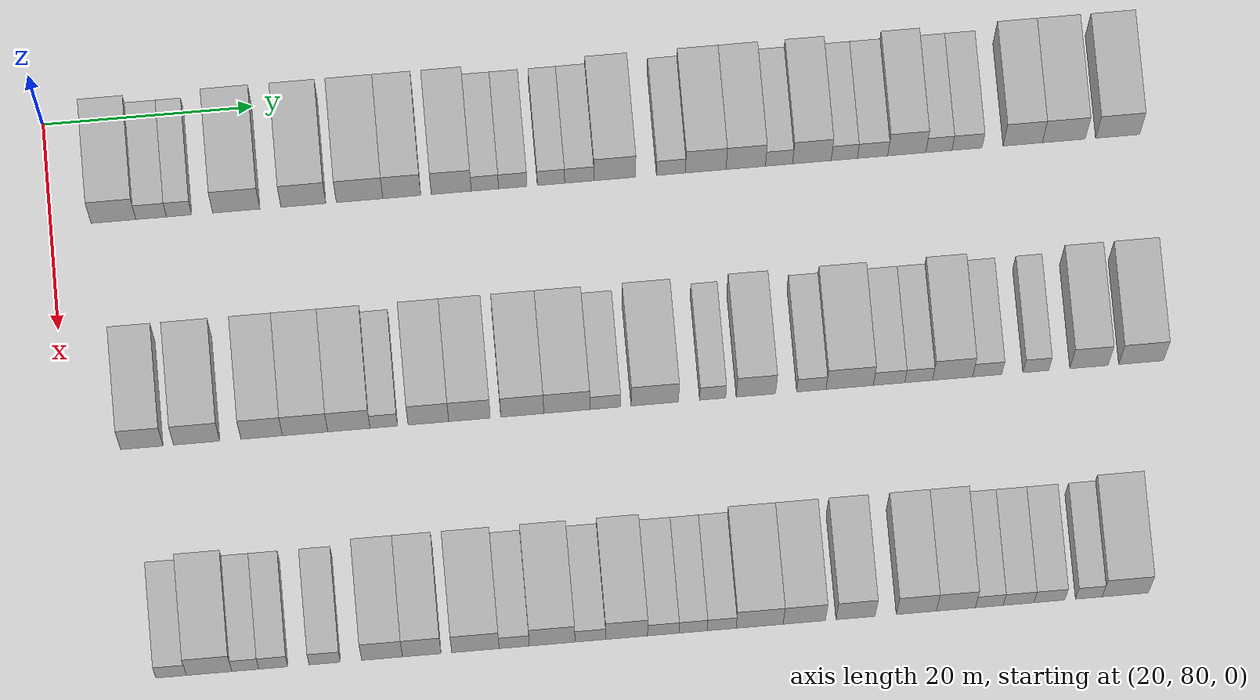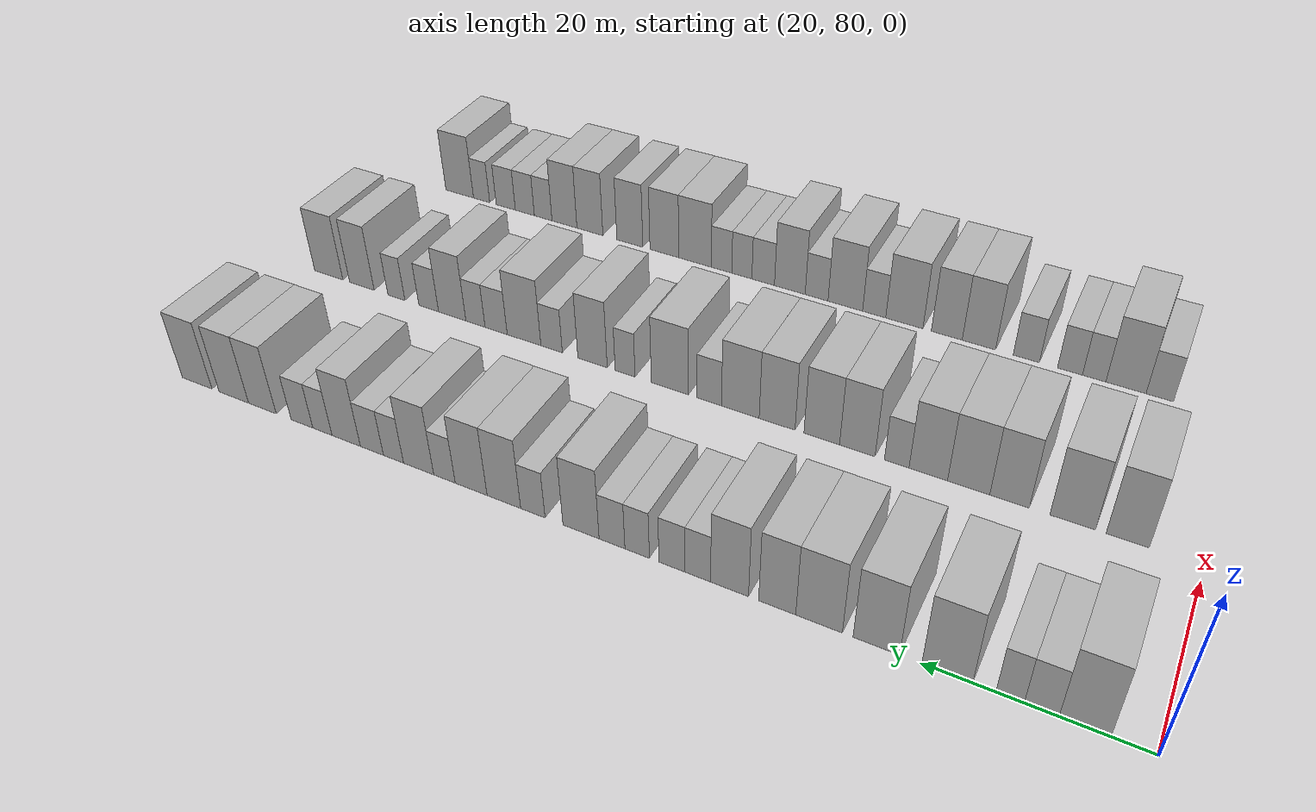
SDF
<sdf version="1.6">
 <world name="default">
  <model name="building_115">
   <static>1</static>
   <pose>25.0000 85.9565 0 0.000000 0.000000 0.000000</pose>
   <link name="link">
    <pose>0 0 4.50 0 0 0</pose>
    <collision name="collision"><geometry><box><size>10.0000 4.2495 9.0000</size></box></geometry></collision>
    <visual name="visual">
     <cast_shadows>0</cast_shadows>
     <geometry><box><size>10.0000 4.2495 9.0000</size></box></geometry>
     <material>
      <script>
       <uri>model://HANNAS_wall/materials/scripts</uri>
       <uri>model://HANNAS_wall/materials/textures</uri>
       <name>vrc/HANNAS_wall</name>
      </script>
     </material>
    </visual>
   </link>
  </model>
  <model name="building_116">
   <static>1</static>
   <pose>25.0000 89.5374 0 0.000000 0.000000 0.000000</pose>
   <link name="link">
    <pose>0 0 3.00 0 0 0</pose>
    <collision name="collision"><geometry><box><size>10.0000 2.9125 6.0000</size></box></geometry></collision>
    <visual name="visual">
     <cast_shadows>0</cast_shadows>
     <geometry><box><size>10.0000 2.9125 6.0000</size></box></geometry>
     <material>
      <script>
       <uri>model://HANNAS_wall/materials/scripts</uri>
       <uri>model://HANNAS_wall/materials/textures</uri>
       <name>vrc/HANNAS_wall</name>
      </script>
     </material>
    </visual>
   </link>
  </model>
  <model name="building_117">
   <static>1</static>
   <pose>25.0000 92.1977 0 0.000000 0.000000 0.000000</pose>
   <link name="link">
    <pose>0 0 3.00 0 0 0</pose>
    <collision name="collision"><geometry><box><size>10.0000 2.4080 6.0000</size></box></geometry></collision>
    <visual name="visual">
     <cast_shadows>0</cast_shadows>
     <geometry><box><size>10.0000 2.4080 6.0000</size></box></geometry>
     <material>
      <script>
       <uri>model://HANNAS_wall/materials/scripts</uri>
       <uri>model://HANNAS_wall/materials/textures</uri>
       <name>vrc/HANNAS_wall</name>
      </script>
     </material>
    </visual>
   </link>
  </model>
  <model name="building_118">
   <static>1</static>
   <pose>25.0000 97.6425 0 0.000000 0.000000 0.000000</pose>
   <link name="link">
    <pose>0 0 4.50 0 0 0</pose>
    <collision name="collision"><geometry><box><size>10.0000 4.4817 9.0000</size></box></geometry></collision>
    <visual name="visual">
     <cast_shadows>0</cast_shadows>
     <geometry><box><size>10.0000 4.4817 9.0000</size></box></geometry>
     <material>
      <script>
       <uri>model://HANNAS_wall/materials/scripts</uri>
       <uri>model://HANNAS_wall/materials/textures</uri>
       <name>vrc/HANNAS_wall</name>
      </script>
     </material>
    </visual>
   </link>
  </model>
  <model name="building_119">
   <static>1</static>
   <pose>25.0000 104.0181 0 0.000000 0.000000 0.000000</pose>
   <link name="link">
    <pose>0 0 4.50 0 0 0</pose>
    <collision name="collision"><geometry><box><size>10.0000 4.2696 9.0000</size></box></geometry></collision>
    <visual name="visual">
     <cast_shadows>0</cast_shadows>
     <geometry><box><size>10.0000 4.2696 9.0000</size></box></geometry>
     <material>
      <script>
       <uri>model://HANNAS_wall/materials/scripts</uri>
       <uri>model://HANNAS_wall/materials/textures</uri>
       <name>vrc/HANNAS_wall</name>
      </script>
     </material>
    </visual>
   </link>
  </model>
  <model name="building_120">
   <static>1</static>
   <pose>25.0000 109.3655 0 0.000000 0.000000 0.000000</pose>
   <link name="link">
    <pose>0 0 4.50 0 0 0</pose>
    <collision name="collision"><geometry><box><size>10.0000 4.4252 9.0000</size></box></geometry></collision>
    <visual name="visual">
     <cast_shadows>0</cast_shadows>
     <geometry><box><size>10.0000 4.4252 9.0000</size></box></geometry>
     <material>
      <script>
       <uri>model://HANNAS_wall/materials/scripts</uri>
       <uri>model://HANNAS_wall/materials/textures</uri>
       <name>vrc/HANNAS_wall</name>
      </script>
     </material>
    </visual>
   </link>
  </model>
  <model name="building_121">
   <static>1</static>
   <pose>25.0000 113.3818 0 0.000000 0.000000 0.000000</pose>
   <link name="link">
    <pose>0 0 4.50 0 0 0</pose>
    <collision name="collision"><geometry><box><size>10.0000 3.6074 9.0000</size></box></geometry></collision>
    <visual name="visual">
     <cast_shadows>0</cast_shadows>
     <geometry><box><size>10.0000 3.6074 9.0000</size></box></geometry>
     <material>
      <script>
       <uri>model://HANNAS_wall/materials/scripts</uri>
       <uri>model://HANNAS_wall/materials/textures</uri>
       <name>vrc/HANNAS_wall</name>
      </script>
     </material>
    </visual>
   </link>
  </model>
  <model name="building_122">
   <static>1</static>
   <pose>25.0000 118.0857 0 0.000000 0.000000 0.000000</pose>
   <link name="link">
    <pose>0 0 4.50 0 0 0</pose>
    <collision name="collision"><geometry><box><size>10.0000 3.8004 9.0000</size></box></geometry></collision>
    <visual name="visual">
     <cast_shadows>0</cast_shadows>
     <geometry><box><size>10.0000 3.8004 9.0000</size></box></geometry>
     <material>
      <script>
       <uri>model://HANNAS_wall/materials/scripts</uri>
       <uri>model://HANNAS_wall/materials/textures</uri>
       <name>vrc/HANNAS_wall</name>
      </script>
     </material>
    </visual>
   </link>
  </model>
  <model name="building_123">
   <static>1</static>
   <pose>25.0000 121.2868 0 0.000000 0.000000 0.000000</pose>
   <link name="link">
    <pose>0 0 3.00 0 0 0</pose>
    <collision name="collision"><geometry><box><size>10.0000 2.6018 6.0000</size></box></geometry></collision>
    <visual name="visual">
     <cast_shadows>0</cast_shadows>
     <geometry><box><size>10.0000 2.6018 6.0000</size></box></geometry>
     <material>
      <script>
       <uri>model://HANNAS_wall/materials/scripts</uri>
       <uri>model://HANNAS_wall/materials/textures</uri>
       <name>vrc/HANNAS_wall</name>
      </script>
     </material>
    </visual>
   </link>
  </model>
  <model name="building_124">
   <static>1</static>
   <pose>25.0000 123.9364 0 0.000000 0.000000 0.000000</pose>
   <link name="link">
    <pose>0 0 3.00 0 0 0</pose>
    <collision name="collision"><geometry><box><size>10.0000 2.6975 6.0000</size></box></geometry></collision>
    <visual name="visual">
     <cast_shadows>0</cast_shadows>
     <geometry><box><size>10.0000 2.6975 6.0000</size></box></geometry>
     <material>
      <script>
       <uri>model://HANNAS_wall/materials/scripts</uri>
       <uri>model://HANNAS_wall/materials/textures</uri>
       <name>vrc/HANNAS_wall</name>
      </script>
     </material>
    </visual>
   </link>
  </model>
  <model name="building_125">
   <static>1</static>
   <pose>25.0000 127.5830 0 0.000000 0.000000 0.000000</pose>
   <link name="link">
    <pose>0 0 3.00 0 0 0</pose>
    <collision name="collision"><geometry><box><size>10.0000 2.5956 6.0000</size></box></geometry></collision>
    <visual name="visual">
     <cast_shadows>0</cast_shadows>
     <geometry><box><size>10.0000 2.5956 6.0000</size></box></geometry>
     <material>
      <script>
       <uri>model://HANNAS_wall/materials/scripts</uri>
       <uri>model://HANNAS_wall/materials/textures</uri>
       <name>vrc/HANNAS_wall</name>
      </script>
     </material>
    </visual>
   </link>
  </model>
  <model name="building_126">
   <static>1</static>
   <pose>25.0000 130.2690 0 0.000000 0.000000 0.000000</pose>
   <link name="link">
    <pose>0 0 3.00 0 0 0</pose>
    <collision name="collision"><geometry><box><size>10.0000 2.7764 6.0000</size></box></geometry></collision>
    <visual name="visual">
     <cast_shadows>0</cast_shadows>
     <geometry><box><size>10.0000 2.7764 6.0000</size></box></geometry>
     <material>
      <script>
       <uri>model://HANNAS_wall/materials/scripts</uri>
       <uri>model://HANNAS_wall/materials/textures</uri>
       <name>vrc/HANNAS_wall</name>
      </script>
     </material>
    </visual>
   </link>
  </model>
  <model name="building_127">
   <static>1</static>
   <pose>25.0000 133.6411 0 0.000000 0.000000 0.000000</pose>
   <link name="link">
    <pose>0 0 4.50 0 0 0</pose>
    <collision name="collision"><geometry><box><size>10.0000 3.9678 9.0000</size></box></geometry></collision>
    <visual name="visual">
     <cast_shadows>0</cast_shadows>
     <geometry><box><size>10.0000 3.9678 9.0000</size></box></geometry>
     <material>
      <script>
       <uri>model://HANNAS_wall/materials/scripts</uri>
       <uri>model://HANNAS_wall/materials/textures</uri>
       <name>vrc/HANNAS_wall</name>
      </script>
     </material>
    </visual>
   </link>
  </model>
  <model name="building_128">
   <static>1</static>
   <pose>25.0000 139.0016 0 0.000000 0.000000 0.000000</pose>
   <link name="link">
    <pose>0 0 3.00 0 0 0</pose>
    <collision name="collision"><geometry><box><size>10.0000 2.7532 6.0000</size></box></geometry></collision>
    <visual name="visual">
     <cast_shadows>0</cast_shadows>
     <geometry><box><size>10.0000 2.7532 6.0000</size></box></geometry>
     <material>
      <script>
       <uri>model://HANNAS_wall/materials/scripts</uri>
       <uri>model://HANNAS_wall/materials/textures</uri>
       <name>vrc/HANNAS_wall</name>
      </script>
     </material>
    </visual>
   </link>
  </model>
  <model name="building_129">
   <static>1</static>
   <pose>25.0000 142.3176 0 0.000000 0.000000 0.000000</pose>
   <link name="link">
    <pose>0 0 4.50 0 0 0</pose>
    <collision name="collision"><geometry><box><size>10.0000 3.8788 9.0000</size></box></geometry></collision>
    <visual name="visual">
     <cast_shadows>0</cast_shadows>
     <geometry><box><size>10.0000 3.8788 9.0000</size></box></geometry>
     <material>
      <script>
       <uri>model://HANNAS_wall/materials/scripts</uri>
       <uri>model://HANNAS_wall/materials/textures</uri>
       <name>vrc/HANNAS_wall</name>
      </script>
     </material>
    </visual>
   </link>
  </model>
  <model name="building_130">
   <static>1</static>
   <pose>25.0000 146.1307 0 0.000000 0.000000 0.000000</pose>
   <link name="link">
    <pose>0 0 4.50 0 0 0</pose>
    <collision name="collision"><geometry><box><size>10.0000 3.7473 9.0000</size></box></geometry></collision>
    <visual name="visual">
     <cast_shadows>0</cast_shadows>
     <geometry><box><size>10.0000 3.7473 9.0000</size></box></geometry>
     <material>
      <script>
       <uri>model://HANNAS_wall/materials/scripts</uri>
       <uri>model://HANNAS_wall/materials/textures</uri>
       <name>vrc/HANNAS_wall</name>
      </script>
     </material>
    </visual>
   </link>
  </model>
  <model name="building_131">
   <static>1</static>
   <pose>25.0000 149.2946 0 0.000000 0.000000 0.000000</pose>
   <link name="link">
    <pose>0 0 3.00 0 0 0</pose>
    <collision name="collision"><geometry><box><size>10.0000 2.5807 6.0000</size></box></geometry></collision>
    <visual name="visual">
     <cast_shadows>0</cast_shadows>
     <geometry><box><size>10.0000 2.5807 6.0000</size></box></geometry>
     <material>
      <script>
       <uri>model://HANNAS_wall/materials/scripts</uri>
       <uri>model://HANNAS_wall/materials/textures</uri>
       <name>vrc/HANNAS_wall</name>
      </script>
     </material>
    </visual>
   </link>
  </model>
  <model name="building_132">
   <static>1</static>
   <pose>25.0000 152.4304 0 0.000000 0.000000 0.000000</pose>
   <link name="link">
    <pose>0 0 4.50 0 0 0</pose>
    <collision name="collision"><geometry><box><size>10.0000 3.6908 9.0000</size></box></geometry></collision>
    <visual name="visual">
     <cast_shadows>0</cast_shadows>
     <geometry><box><size>10.0000 3.6908 9.0000</size></box></geometry>
     <material>
      <script>
       <uri>model://HANNAS_wall/materials/scripts</uri>
       <uri>model://HANNAS_wall/materials/textures</uri>
       <name>vrc/HANNAS_wall</name>
      </script>
     </material>
    </visual>
   </link>
  </model>
  <model name="building_133">
   <static>1</static>
   <pose>25.0000 155.5209 0 0.000000 0.000000 0.000000</pose>
   <link name="link">
    <pose>0 0 3.00 0 0 0</pose>
    <collision name="collision"><geometry><box><size>10.0000 2.4902 6.0000</size></box></geometry></collision>
    <visual name="visual">
     <cast_shadows>0</cast_shadows>
     <geometry><box><size>10.0000 2.4902 6.0000</size></box></geometry>
     <material>
      <script>
       <uri>model://HANNAS_wall/materials/scripts</uri>
       <uri>model://HANNAS_wall/materials/textures</uri>
       <name>vrc/HANNAS_wall</name>
      </script>
     </material>
    </visual>
   </link>
  </model>
  <model name="building_134">
   <static>1</static>
   <pose>25.0000 158.2154 0 0.000000 0.000000 0.000000</pose>
   <link name="link">
    <pose>0 0 3.00 0 0 0</pose>
    <collision name="collision"><geometry><box><size>10.0000 2.8987 6.0000</size></box></geometry></collision>
    <visual name="visual">
     <cast_shadows>0</cast_shadows>
     <geometry><box><size>10.0000 2.8987 6.0000</size></box></geometry>
     <material>
      <script>
       <uri>model://HANNAS_wall/materials/scripts</uri>
       <uri>model://HANNAS_wall/materials/textures</uri>
       <name>vrc/HANNAS_wall</name>
      </script>
     </material>
    </visual>
   </link>
  </model>
  <model name="building_135">
   <static>1</static>
   <pose>25.0000 161.4828 0 0.000000 0.000000 0.000000</pose>
   <link name="link">
    <pose>0 0 4.50 0 0 0</pose>
    <collision name="collision"><geometry><box><size>10.0000 3.6362 9.0000</size></box></geometry></collision>
    <visual name="visual">
     <cast_shadows>0</cast_shadows>
     <geometry><box><size>10.0000 3.6362 9.0000</size></box></geometry>
     <material>
      <script>
       <uri>model://HANNAS_wall/materials/scripts</uri>
       <uri>model://HANNAS_wall/materials/textures</uri>
       <name>vrc/HANNAS_wall</name>
      </script>
     </material>
    </visual>
   </link>
  </model>
  <model name="building_136">
   <static>1</static>
   <pose>25.0000 164.5500 0 0.000000 0.000000 0.000000</pose>
   <link name="link">
    <pose>0 0 3.00 0 0 0</pose>
    <collision name="collision"><geometry><box><size>10.0000 2.4982 6.0000</size></box></geometry></collision>
    <visual name="visual">
     <cast_shadows>0</cast_shadows>
     <geometry><box><size>10.0000 2.4982 6.0000</size></box></geometry>
     <material>
      <script>
       <uri>model://HANNAS_wall/materials/scripts</uri>
       <uri>model://HANNAS_wall/materials/textures</uri>
       <name>vrc/HANNAS_wall</name>
      </script>
     </material>
    </visual>
   </link>
  </model>
  <model name="building_137">
   <static>1</static>
   <pose>25.0000 167.2339 0 0.000000 0.000000 0.000000</pose>
   <link name="link">
    <pose>0 0 3.00 0 0 0</pose>
    <collision name="collision"><geometry><box><size>10.0000 2.8696 6.0000</size></box></geometry></collision>
    <visual name="visual">
     <cast_shadows>0</cast_shadows>
     <geometry><box><size>10.0000 2.8696 6.0000</size></box></geometry>
     <material>
      <script>
       <uri>model://HANNAS_wall/materials/scripts</uri>
       <uri>model://HANNAS_wall/materials/textures</uri>
       <name>vrc/HANNAS_wall</name>
      </script>
     </material>
    </visual>
   </link>
  </model>
  <model name="building_138">
   <static>1</static>
   <pose>25.0000 172.5448 0 0.000000 0.000000 0.000000</pose>
   <link name="link">
    <pose>0 0 4.50 0 0 0</pose>
    <collision name="collision"><geometry><box><size>10.0000 3.7520 9.0000</size></box></geometry></collision>
    <visual name="visual">
     <cast_shadows>0</cast_shadows>
     <geometry><box><size>10.0000 3.7520 9.0000</size></box></geometry>
     <material>
      <script>
       <uri>model://HANNAS_wall/materials/scripts</uri>
       <uri>model://HANNAS_wall/materials/textures</uri>
       <name>vrc/HANNAS_wall</name>
      </script>
     </material>
    </visual>
   </link>
  </model>
  <model name="building_139">
   <static>1</static>
   <pose>25.0000 176.4648 0 0.000000 0.000000 0.000000</pose>
   <link name="link">
    <pose>0 0 4.50 0 0 0</pose>
    <collision name="collision"><geometry><box><size>10.0000 4.0881 9.0000</size></box></geometry></collision>
    <visual name="visual">
     <cast_shadows>0</cast_shadows>
     <geometry><box><size>10.0000 4.0881 9.0000</size></box></geometry>
     <material>
      <script>
       <uri>model://HANNAS_wall/materials/scripts</uri>
       <uri>model://HANNAS_wall/materials/textures</uri>
       <name>vrc/HANNAS_wall</name>
      </script>
     </material>
    </visual>
   </link>
  </model>
  <model name="building_140">
   <static>1</static>
   <pose>25.0000 181.6111 0 0.000000 0.000000 0.000000</pose>
   <link name="link">
    <pose>0 0 4.50 0 0 0</pose>
    <collision name="collision"><geometry><box><size>10.0000 4.2044 9.0000</size></box></geometry></collision>
    <visual name="visual">
     <cast_shadows>0</cast_shadows>
     <geometry><box><size>10.0000 4.2044 9.0000</size></box></geometry>
     <material>
      <script>
       <uri>model://HANNAS_wall/materials/scripts</uri>
       <uri>model://HANNAS_wall/materials/textures</uri>
       <name>vrc/HANNAS_wall</name>
      </script>
     </material>
    </visual>
   </link>
  </model>
  <model name="building_301">
   <static>1</static>
   <pose>47.0000 87.0062 0 0.000000 0.000000 0.000000</pose>
   <link name="link">
    <pose>0 0 4.50 0 0 0</pose>
    <collision name="collision"><geometry><box><size>10.0000 4.0184 9.0000</size></box></geometry></collision>
    <visual name="visual">
     <cast_shadows>0</cast_shadows>
     <geometry><box><size>10.0000 4.0184 9.0000</size></box></geometry>
     <material>
      <script>
       <uri>model://HANNAS_wall/materials/scripts</uri>
       <uri>model://HANNAS_wall/materials/textures</uri>
       <name>vrc/HANNAS_wall</name>
      </script>
     </material>
    </visual>
   </link>
  </model>
  <model name="building_302">
   <static>1</static>
   <pose>47.0000 92.1971 0 0.000000 0.000000 0.000000</pose>
   <link name="link">
    <pose>0 0 4.50 0 0 0</pose>
    <collision name="collision"><geometry><box><size>10.0000 4.3633 9.0000</size></box></geometry></collision>
    <visual name="visual">
     <cast_shadows>0</cast_shadows>
     <geometry><box><size>10.0000 4.3633 9.0000</size></box></geometry>
     <material>
      <script>
       <uri>model://HANNAS_wall/materials/scripts</uri>
       <uri>model://HANNAS_wall/materials/textures</uri>
       <name>vrc/HANNAS_wall</name>
      </script>
     </material>
    </visual>
   </link>
  </model>
  <model name="building_303">
   <static>1</static>
   <pose>47.0000 98.3403 0 0.000000 0.000000 0.000000</pose>
   <link name="link">
    <pose>0 0 4.50 0 0 0</pose>
    <collision name="collision"><geometry><box><size>10.0000 3.9231 9.0000</size></box></geometry></collision>
    <visual name="visual">
     <cast_shadows>0</cast_shadows>
     <geometry><box><size>10.0000 3.9231 9.0000</size></box></geometry>
     <material>
      <script>
       <uri>model://HANNAS_wall/materials/scripts</uri>
       <uri>model://HANNAS_wall/materials/textures</uri>
       <name>vrc/HANNAS_wall</name>
      </script>
     </material>
    </visual>
   </link>
  </model>
  <model name="building_304">
   <static>1</static>
   <pose>47.0000 102.4447 0 0.000000 0.000000 0.000000</pose>
   <link name="link">
    <pose>0 0 4.50 0 0 0</pose>
    <collision name="collision"><geometry><box><size>10.0000 4.2856 9.0000</size></box></geometry></collision>
    <visual name="visual">
     <cast_shadows>0</cast_shadows>
     <geometry><box><size>10.0000 4.2856 9.0000</size></box></geometry>
     <material>
      <script>
       <uri>model://HANNAS_wall/materials/scripts</uri>
       <uri>model://HANNAS_wall/materials/textures</uri>
       <name>vrc/HANNAS_wall</name>
      </script>
     </material>
    </visual>
   </link>
  </model>
  <model name="building_305">
   <static>1</static>
   <pose>47.0000 106.5850 0 0.000000 0.000000 0.000000</pose>
   <link name="link">
    <pose>0 0 4.50 0 0 0</pose>
    <collision name="collision"><geometry><box><size>10.0000 3.9951 9.0000</size></box></geometry></collision>
    <visual name="visual">
     <cast_shadows>0</cast_shadows>
     <geometry><box><size>10.0000 3.9951 9.0000</size></box></geometry>
     <material>
      <script>
       <uri>model://HANNAS_wall/materials/scripts</uri>
       <uri>model://HANNAS_wall/materials/textures</uri>
       <name>vrc/HANNAS_wall</name>
      </script>
     </material>
    </visual>
   </link>
  </model>
  <model name="building_306">
   <static>1</static>
   <pose>47.0000 109.8818 0 0.000000 0.000000 0.000000</pose>
   <link name="link">
    <pose>0 0 3.00 0 0 0</pose>
    <collision name="collision"><geometry><box><size>10.0000 2.5984 6.0000</size></box></geometry></collision>
    <visual name="visual">
     <cast_shadows>0</cast_shadows>
     <geometry><box><size>10.0000 2.5984 6.0000</size></box></geometry>
     <material>
      <script>
       <uri>model://HANNAS_wall/materials/scripts</uri>
       <uri>model://HANNAS_wall/materials/textures</uri>
       <name>vrc/HANNAS_wall</name>
      </script>
     </material>
    </visual>
   </link>
  </model>
  <model name="building_307">
   <static>1</static>
   <pose>47.0000 114.1004 0 0.000000 0.000000 0.000000</pose>
   <link name="link">
    <pose>0 0 4.50 0 0 0</pose>
    <collision name="collision"><geometry><box><size>10.0000 3.8390 9.0000</size></box></geometry></collision>
    <visual name="visual">
     <cast_shadows>0</cast_shadows>
     <geometry><box><size>10.0000 3.8390 9.0000</size></box></geometry>
     <material>
      <script>
       <uri>model://HANNAS_wall/materials/scripts</uri>
       <uri>model://HANNAS_wall/materials/textures</uri>
       <name>vrc/HANNAS_wall</name>
      </script>
     </material>
    </visual>
   </link>
  </model>
  <model name="building_308">
   <static>1</static>
   <pose>47.0000 117.9828 0 0.000000 0.000000 0.000000</pose>
   <link name="link">
    <pose>0 0 4.50 0 0 0</pose>
    <collision name="collision"><geometry><box><size>10.0000 3.9259 9.0000</size></box></geometry></collision>
    <visual name="visual">
     <cast_shadows>0</cast_shadows>
     <geometry><box><size>10.0000 3.9259 9.0000</size></box></geometry>
     <material>
      <script>
       <uri>model://HANNAS_wall/materials/scripts</uri>
       <uri>model://HANNAS_wall/materials/textures</uri>
       <name>vrc/HANNAS_wall</name>
      </script>
     </material>
    </visual>
   </link>
  </model>
  <model name="building_309">
   <static>1</static>
   <pose>47.0000 122.9779 0 0.000000 0.000000 0.000000</pose>
   <link name="link">
    <pose>0 0 4.50 0 0 0</pose>
    <collision name="collision"><geometry><box><size>10.0000 4.0644 9.0000</size></box></geometry></collision>
    <visual name="visual">
     <cast_shadows>0</cast_shadows>
     <geometry><box><size>10.0000 4.0644 9.0000</size></box></geometry>
     <material>
      <script>
       <uri>model://HANNAS_wall/materials/scripts</uri>
       <uri>model://HANNAS_wall/materials/textures</uri>
       <name>vrc/HANNAS_wall</name>
      </script>
     </material>
    </visual>
   </link>
  </model>
  <model name="building_310">
   <static>1</static>
   <pose>47.0000 127.1942 0 0.000000 0.000000 0.000000</pose>
   <link name="link">
    <pose>0 0 4.50 0 0 0</pose>
    <collision name="collision"><geometry><box><size>10.0000 4.3681 9.0000</size></box></geometry></collision>
    <visual name="visual">
     <cast_shadows>0</cast_shadows>
     <geometry><box><size>10.0000 4.3681 9.0000</size></box></geometry>
     <material>
      <script>
       <uri>model://HANNAS_wall/materials/scripts</uri>
       <uri>model://HANNAS_wall/materials/textures</uri>
       <name>vrc/HANNAS_wall</name>
      </script>
     </material>
    </visual>
   </link>
  </model>
  <model name="building_311">
   <static>1</static>
   <pose>47.0000 130.8275 0 0.000000 0.000000 0.000000</pose>
   <link name="link">
    <pose>0 0 3.00 0 0 0</pose>
    <collision name="collision"><geometry><box><size>10.0000 2.8986 6.0000</size></box></geometry></collision>
    <visual name="visual">
     <cast_shadows>0</cast_shadows>
     <geometry><box><size>10.0000 2.8986 6.0000</size></box></geometry>
     <material>
      <script>
       <uri>model://HANNAS_wall/materials/scripts</uri>
       <uri>model://HANNAS_wall/materials/textures</uri>
       <name>vrc/HANNAS_wall</name>
      </script>
     </material>
    </visual>
   </link>
  </model>
  <model name="building_312">
   <static>1</static>
   <pose>47.0000 135.5224 0 0.000000 0.000000 0.000000</pose>
   <link name="link">
    <pose>0 0 4.50 0 0 0</pose>
    <collision name="collision"><geometry><box><size>10.0000 4.4910 9.0000</size></box></geometry></collision>
    <visual name="visual">
     <cast_shadows>0</cast_shadows>
     <geometry><box><size>10.0000 4.4910 9.0000</size></box></geometry>
     <material>
      <script>
       <uri>model://HANNAS_wall/materials/scripts</uri>
       <uri>model://HANNAS_wall/materials/textures</uri>
       <name>vrc/HANNAS_wall</name>
      </script>
     </material>
    </visual>
   </link>
  </model>
  <model name="building_313">
   <static>1</static>
   <pose>47.0000 141.0016 0 0.000000 0.000000 0.000000</pose>
   <link name="link">
    <pose>0 0 3.00 0 0 0</pose>
    <collision name="collision"><geometry><box><size>10.0000 2.4674 6.0000</size></box></geometry></collision>
    <visual name="visual">
     <cast_shadows>0</cast_shadows>
     <geometry><box><size>10.0000 2.4674 6.0000</size></box></geometry>
     <material>
      <script>
       <uri>model://HANNAS_wall/materials/scripts</uri>
       <uri>model://HANNAS_wall/materials/textures</uri>
       <name>vrc/HANNAS_wall</name>
      </script>
     </material>
    </visual>
   </link>
  </model>
  <model name="building_314">
   <static>1</static>
   <pose>47.0000 145.0997 0 0.000000 0.000000 0.000000</pose>
   <link name="link">
    <pose>0 0 4.50 0 0 0</pose>
    <collision name="collision"><geometry><box><size>10.0000 3.7290 9.0000</size></box></geometry></collision>
    <visual name="visual">
     <cast_shadows>0</cast_shadows>
     <geometry><box><size>10.0000 3.7290 9.0000</size></box></geometry>
     <material>
      <script>
       <uri>model://HANNAS_wall/materials/scripts</uri>
       <uri>model://HANNAS_wall/materials/textures</uri>
       <name>vrc/HANNAS_wall</name>
      </script>
     </material>
    </visual>
   </link>
  </model>
  <model name="building_315">
   <static>1</static>
   <pose>47.0000 150.3573 0 0.000000 0.000000 0.000000</pose>
   <link name="link">
    <pose>0 0 3.00 0 0 0</pose>
    <collision name="collision"><geometry><box><size>10.0000 2.7862 6.0000</size></box></geometry></collision>
    <visual name="visual">
     <cast_shadows>0</cast_shadows>
     <geometry><box><size>10.0000 2.7862 6.0000</size></box></geometry>
     <material>
      <script>
       <uri>model://HANNAS_wall/materials/scripts</uri>
       <uri>model://HANNAS_wall/materials/textures</uri>
       <name>vrc/HANNAS_wall</name>
      </script>
     </material>
    </visual>
   </link>
  </model>
  <model name="building_316">
   <static>1</static>
   <pose>47.0000 153.9883 0 0.000000 0.000000 0.000000</pose>
   <link name="link">
    <pose>0 0 4.50 0 0 0</pose>
    <collision name="collision"><geometry><box><size>10.0000 4.4758 9.0000</size></box></geometry></collision>
    <visual name="visual">
     <cast_shadows>0</cast_shadows>
     <geometry><box><size>10.0000 4.4758 9.0000</size></box></geometry>
     <material>
      <script>
       <uri>model://HANNAS_wall/materials/scripts</uri>
       <uri>model://HANNAS_wall/materials/textures</uri>
       <name>vrc/HANNAS_wall</name>
      </script>
     </material>
    </visual>
   </link>
  </model>
  <model name="building_317">
   <static>1</static>
   <pose>47.0000 157.7189 0 0.000000 0.000000 0.000000</pose>
   <link name="link">
    <pose>0 0 3.00 0 0 0</pose>
    <collision name="collision"><geometry><box><size>10.0000 2.9854 6.0000</size></box></geometry></collision>
    <visual name="visual">
     <cast_shadows>0</cast_shadows>
     <geometry><box><size>10.0000 2.9854 6.0000</size></box></geometry>
     <material>
      <script>
       <uri>model://HANNAS_wall/materials/scripts</uri>
       <uri>model://HANNAS_wall/materials/textures</uri>
       <name>vrc/HANNAS_wall</name>
      </script>
     </material>
    </visual>
   </link>
  </model>
  <model name="building_318">
   <static>1</static>
   <pose>47.0000 160.5237 0 0.000000 0.000000 0.000000</pose>
   <link name="link">
    <pose>0 0 3.00 0 0 0</pose>
    <collision name="collision"><geometry><box><size>10.0000 2.6243 6.0000</size></box></geometry></collision>
    <visual name="visual">
     <cast_shadows>0</cast_shadows>
     <geometry><box><size>10.0000 2.6243 6.0000</size></box></geometry>
     <material>
      <script>
       <uri>model://HANNAS_wall/materials/scripts</uri>
       <uri>model://HANNAS_wall/materials/textures</uri>
       <name>vrc/HANNAS_wall</name>
      </script>
     </material>
    </visual>
   </link>
  </model>
  <model name="building_319">
   <static>1</static>
   <pose>47.0000 163.7369 0 0.000000 0.000000 0.000000</pose>
   <link name="link">
    <pose>0 0 4.50 0 0 0</pose>
    <collision name="collision"><geometry><box><size>10.0000 3.8022 9.0000</size></box></geometry></collision>
    <visual name="visual">
     <cast_shadows>0</cast_shadows>
     <geometry><box><size>10.0000 3.8022 9.0000</size></box></geometry>
     <material>
      <script>
       <uri>model://HANNAS_wall/materials/scripts</uri>
       <uri>model://HANNAS_wall/materials/textures</uri>
       <name>vrc/HANNAS_wall</name>
      </script>
     </material>
    </visual>
   </link>
  </model>
  <model name="building_320">
   <static>1</static>
   <pose>47.0000 167.0254 0 0.000000 0.000000 0.000000</pose>
   <link name="link">
    <pose>0 0 3.00 0 0 0</pose>
    <collision name="collision"><geometry><box><size>10.0000 2.7748 6.0000</size></box></geometry></collision>
    <visual name="visual">
     <cast_shadows>0</cast_shadows>
     <geometry><box><size>10.0000 2.7748 6.0000</size></box></geometry>
     <material>
      <script>
       <uri>model://HANNAS_wall/materials/scripts</uri>
       <uri>model://HANNAS_wall/materials/textures</uri>
       <name>vrc/HANNAS_wall</name>
      </script>
     </material>
    </visual>
   </link>
  </model>
  <model name="building_321">
   <static>1</static>
   <pose>47.0000 171.6408 0 0.000000 0.000000 0.000000</pose>
   <link name="link">
    <pose>0 0 3.00 0 0 0</pose>
    <collision name="collision"><geometry><box><size>10.0000 2.4560 6.0000</size></box></geometry></collision>
    <visual name="visual">
     <cast_shadows>0</cast_shadows>
     <geometry><box><size>10.0000 2.4560 6.0000</size></box></geometry>
     <material>
      <script>
       <uri>model://HANNAS_wall/materials/scripts</uri>
       <uri>model://HANNAS_wall/materials/textures</uri>
       <name>vrc/HANNAS_wall</name>
      </script>
     </material>
    </visual>
   </link>
  </model>
  <model name="building_322">
   <static>1</static>
   <pose>47.0000 176.6853 0 0.000000 0.000000 0.000000</pose>
   <link name="link">
    <pose>0 0 4.50 0 0 0</pose>
    <collision name="collision"><geometry><box><size>10.0000 3.6331 9.0000</size></box></geometry></collision>
    <visual name="visual">
     <cast_shadows>0</cast_shadows>
     <geometry><box><size>10.0000 3.6331 9.0000</size></box></geometry>
     <material>
      <script>
       <uri>model://HANNAS_wall/materials/scripts</uri>
       <uri>model://HANNAS_wall/materials/textures</uri>
       <name>vrc/HANNAS_wall</name>
      </script>
     </material>
    </visual>
   </link>
  </model>
  <model name="building_323">
   <static>1</static>
   <pose>47.0000 181.6271 0 0.000000 0.000000 0.000000</pose>
   <link name="link">
    <pose>0 0 4.50 0 0 0</pose>
    <collision name="collision"><geometry><box><size>10.0000 4.2505 9.0000</size></box></geometry></collision>
    <visual name="visual">
     <cast_shadows>0</cast_shadows>
     <geometry><box><size>10.0000 4.2505 9.0000</size></box></geometry>
     <material>
      <script>
       <uri>model://HANNAS_wall/materials/scripts</uri>
       <uri>model://HANNAS_wall/materials/textures</uri>
       <name>vrc/HANNAS_wall</name>
      </script>
     </material>
    </visual>
   </link>
  </model>
  <model name="building_483">
   <static>1</static>
   <pose>69.0000 88.1194 0 0.000000 0.000000 0.000000</pose>
   <link name="link">
    <pose>0 0 3.00 0 0 0</pose>
    <collision name="collision"><geometry><box><size>10.0000 2.8631 6.0000</size></box></geometry></collision>
    <visual name="visual">
     <cast_shadows>0</cast_shadows>
     <geometry><box><size>10.0000 2.8631 6.0000</size></box></geometry>
     <material>
      <script>
       <uri>model://HANNAS_wall/materials/scripts</uri>
       <uri>model://HANNAS_wall/materials/textures</uri>
       <name>vrc/HANNAS_wall</name>
      </script>
     </material>
    </visual>
   </link>
  </model>
  <model name="building_484">
   <static>1</static>
   <pose>69.0000 91.6862 0 0.000000 0.000000 0.000000</pose>
   <link name="link">
    <pose>0 0 4.50 0 0 0</pose>
    <collision name="collision"><geometry><box><size>10.0000 4.2707 9.0000</size></box></geometry></collision>
    <visual name="visual">
     <cast_shadows>0</cast_shadows>
     <geometry><box><size>10.0000 4.2707 9.0000</size></box></geometry>
     <material>
      <script>
       <uri>model://HANNAS_wall/materials/scripts</uri>
       <uri>model://HANNAS_wall/materials/textures</uri>
       <name>vrc/HANNAS_wall</name>
      </script>
     </material>
    </visual>
   </link>
  </model>
  <model name="building_485">
   <static>1</static>
   <pose>69.0000 95.0861 0 0.000000 0.000000 0.000000</pose>
   <link name="link">
    <pose>0 0 3.00 0 0 0</pose>
    <collision name="collision"><geometry><box><size>10.0000 2.5290 6.0000</size></box></geometry></collision>
    <visual name="visual">
     <cast_shadows>0</cast_shadows>
     <geometry><box><size>10.0000 2.5290 6.0000</size></box></geometry>
     <material>
      <script>
       <uri>model://HANNAS_wall/materials/scripts</uri>
       <uri>model://HANNAS_wall/materials/textures</uri>
       <name>vrc/HANNAS_wall</name>
      </script>
     </material>
    </visual>
   </link>
  </model>
  <model name="building_486">
   <static>1</static>
   <pose>69.0000 97.7156 0 0.000000 0.000000 0.000000</pose>
   <link name="link">
    <pose>0 0 3.00 0 0 0</pose>
    <collision name="collision"><geometry><box><size>10.0000 2.7300 6.0000</size></box></geometry></collision>
    <visual name="visual">
     <cast_shadows>0</cast_shadows>
     <geometry><box><size>10.0000 2.7300 6.0000</size></box></geometry>
     <material>
      <script>
       <uri>model://HANNAS_wall/materials/scripts</uri>
       <uri>model://HANNAS_wall/materials/textures</uri>
       <name>vrc/HANNAS_wall</name>
      </script>
     </material>
    </visual>
   </link>
  </model>
  <model name="building_487">
   <static>1</static>
   <pose>69.0000 102.5500 0 0.000000 0.000000 0.000000</pose>
   <link name="link">
    <pose>0 0 3.00 0 0 0</pose>
    <collision name="collision"><geometry><box><size>10.0000 2.9389 6.0000</size></box></geometry></collision>
    <visual name="visual">
     <cast_shadows>0</cast_shadows>
     <geometry><box><size>10.0000 2.9389 6.0000</size></box></geometry>
     <material>
      <script>
       <uri>model://HANNAS_wall/materials/scripts</uri>
       <uri>model://HANNAS_wall/materials/textures</uri>
       <name>vrc/HANNAS_wall</name>
      </script>
     </material>
    </visual>
   </link>
  </model>
  <model name="building_488">
   <static>1</static>
   <pose>69.0000 107.9394 0 0.000000 0.000000 0.000000</pose>
   <link name="link">
    <pose>0 0 4.50 0 0 0</pose>
    <collision name="collision"><geometry><box><size>10.0000 3.8397 9.0000</size></box></geometry></collision>
    <visual name="visual">
     <cast_shadows>0</cast_shadows>
     <geometry><box><size>10.0000 3.8397 9.0000</size></box></geometry>
     <material>
      <script>
       <uri>model://HANNAS_wall/materials/scripts</uri>
       <uri>model://HANNAS_wall/materials/textures</uri>
       <name>vrc/HANNAS_wall</name>
      </script>
     </material>
    </visual>
   </link>
  </model>
  <model name="building_489">
   <static>1</static>
   <pose>69.0000 111.6686 0 0.000000 0.000000 0.000000</pose>
   <link name="link">
    <pose>0 0 4.50 0 0 0</pose>
    <collision name="collision"><geometry><box><size>10.0000 3.6187 9.0000</size></box></geometry></collision>
    <visual name="visual">
     <cast_shadows>0</cast_shadows>
     <geometry><box><size>10.0000 3.6187 9.0000</size></box></geometry>
     <material>
      <script>
       <uri>model://HANNAS_wall/materials/scripts</uri>
       <uri>model://HANNAS_wall/materials/textures</uri>
       <name>vrc/HANNAS_wall</name>
      </script>
     </material>
    </visual>
   </link>
  </model>
  <model name="building_490">
   <static>1</static>
   <pose>69.0000 116.7076 0 0.000000 0.000000 0.000000</pose>
   <link name="link">
    <pose>0 0 4.50 0 0 0</pose>
    <collision name="collision"><geometry><box><size>10.0000 4.4594 9.0000</size></box></geometry></collision>
    <visual name="visual">
     <cast_shadows>0</cast_shadows>
     <geometry><box><size>10.0000 4.4594 9.0000</size></box></geometry>
     <material>
      <script>
       <uri>model://HANNAS_wall/materials/scripts</uri>
       <uri>model://HANNAS_wall/materials/textures</uri>
       <name>vrc/HANNAS_wall</name>
      </script>
     </material>
    </visual>
   </link>
  </model>
  <model name="building_491">
   <static>1</static>
   <pose>69.0000 120.3541 0 0.000000 0.000000 0.000000</pose>
   <link name="link">
    <pose>0 0 3.00 0 0 0</pose>
    <collision name="collision"><geometry><box><size>10.0000 2.8336 6.0000</size></box></geometry></collision>
    <visual name="visual">
     <cast_shadows>0</cast_shadows>
     <geometry><box><size>10.0000 2.8336 6.0000</size></box></geometry>
     <material>
      <script>
       <uri>model://HANNAS_wall/materials/scripts</uri>
       <uri>model://HANNAS_wall/materials/textures</uri>
       <name>vrc/HANNAS_wall</name>
      </script>
     </material>
    </visual>
   </link>
  </model>
  <model name="building_492">
   <static>1</static>
   <pose>69.0000 123.9185 0 0.000000 0.000000 0.000000</pose>
   <link name="link">
    <pose>0 0 4.50 0 0 0</pose>
    <collision name="collision"><geometry><box><size>10.0000 4.2953 9.0000</size></box></geometry></collision>
    <visual name="visual">
     <cast_shadows>0</cast_shadows>
     <geometry><box><size>10.0000 4.2953 9.0000</size></box></geometry>
     <material>
      <script>
       <uri>model://HANNAS_wall/materials/scripts</uri>
       <uri>model://HANNAS_wall/materials/textures</uri>
       <name>vrc/HANNAS_wall</name>
      </script>
     </material>
    </visual>
   </link>
  </model>
  <model name="building_493">
   <static>1</static>
   <pose>69.0000 127.5058 0 0.000000 0.000000 0.000000</pose>
   <link name="link">
    <pose>0 0 3.00 0 0 0</pose>
    <collision name="collision"><geometry><box><size>10.0000 2.8793 6.0000</size></box></geometry></collision>
    <visual name="visual">
     <cast_shadows>0</cast_shadows>
     <geometry><box><size>10.0000 2.8793 6.0000</size></box></geometry>
     <material>
      <script>
       <uri>model://HANNAS_wall/materials/scripts</uri>
       <uri>model://HANNAS_wall/materials/textures</uri>
       <name>vrc/HANNAS_wall</name>
      </script>
     </material>
    </visual>
   </link>
  </model>
  <model name="building_494">
   <static>1</static>
   <pose>69.0000 130.9192 0 0.000000 0.000000 0.000000</pose>
   <link name="link">
    <pose>0 0 4.50 0 0 0</pose>
    <collision name="collision"><geometry><box><size>10.0000 3.9475 9.0000</size></box></geometry></collision>
    <visual name="visual">
     <cast_shadows>0</cast_shadows>
     <geometry><box><size>10.0000 3.9475 9.0000</size></box></geometry>
     <material>
      <script>
       <uri>model://HANNAS_wall/materials/scripts</uri>
       <uri>model://HANNAS_wall/materials/textures</uri>
       <name>vrc/HANNAS_wall</name>
      </script>
     </material>
    </visual>
   </link>
  </model>
  <model name="building_495">
   <static>1</static>
   <pose>69.0000 134.3704 0 0.000000 0.000000 0.000000</pose>
   <link name="link">
    <pose>0 0 3.00 0 0 0</pose>
    <collision name="collision"><geometry><box><size>10.0000 2.9549 6.0000</size></box></geometry></collision>
    <visual name="visual">
     <cast_shadows>0</cast_shadows>
     <geometry><box><size>10.0000 2.9549 6.0000</size></box></geometry>
     <material>
      <script>
       <uri>model://HANNAS_wall/materials/scripts</uri>
       <uri>model://HANNAS_wall/materials/textures</uri>
       <name>vrc/HANNAS_wall</name>
      </script>
     </material>
    </visual>
   </link>
  </model>
  <model name="building_496">
   <static>1</static>
   <pose>69.0000 137.1765 0 0.000000 0.000000 0.000000</pose>
   <link name="link">
    <pose>0 0 3.00 0 0 0</pose>
    <collision name="collision"><geometry><box><size>10.0000 2.6574 6.0000</size></box></geometry></collision>
    <visual name="visual">
     <cast_shadows>0</cast_shadows>
     <geometry><box><size>10.0000 2.6574 6.0000</size></box></geometry>
     <material>
      <script>
       <uri>model://HANNAS_wall/materials/scripts</uri>
       <uri>model://HANNAS_wall/materials/textures</uri>
       <name>vrc/HANNAS_wall</name>
      </script>
     </material>
    </visual>
   </link>
  </model>
  <model name="building_497">
   <static>1</static>
   <pose>69.0000 139.8708 0 0.000000 0.000000 0.000000</pose>
   <link name="link">
    <pose>0 0 3.00 0 0 0</pose>
    <collision name="collision"><geometry><box><size>10.0000 2.7313 6.0000</size></box></geometry></collision>
    <visual name="visual">
     <cast_shadows>0</cast_shadows>
     <geometry><box><size>10.0000 2.7313 6.0000</size></box></geometry>
     <material>
      <script>
       <uri>model://HANNAS_wall/materials/scripts</uri>
       <uri>model://HANNAS_wall/materials/textures</uri>
       <name>vrc/HANNAS_wall</name>
      </script>
     </material>
    </visual>
   </link>
  </model>
  <model name="building_498">
   <static>1</static>
   <pose>69.0000 143.4528 0 0.000000 0.000000 0.000000</pose>
   <link name="link">
    <pose>0 0 4.50 0 0 0</pose>
    <collision name="collision"><geometry><box><size>10.0000 4.4325 9.0000</size></box></geometry></collision>
    <visual name="visual">
     <cast_shadows>0</cast_shadows>
     <geometry><box><size>10.0000 4.4325 9.0000</size></box></geometry>
     <material>
      <script>
       <uri>model://HANNAS_wall/materials/scripts</uri>
       <uri>model://HANNAS_wall/materials/textures</uri>
       <name>vrc/HANNAS_wall</name>
      </script>
     </material>
    </visual>
   </link>
  </model>
  <model name="building_499">
   <static>1</static>
   <pose>69.0000 147.6580 0 0.000000 0.000000 0.000000</pose>
   <link name="link">
    <pose>0 0 4.50 0 0 0</pose>
    <collision name="collision"><geometry><box><size>10.0000 3.9779 9.0000</size></box></geometry></collision>
    <visual name="visual">
     <cast_shadows>0</cast_shadows>
     <geometry><box><size>10.0000 3.9779 9.0000</size></box></geometry>
     <material>
      <script>
       <uri>model://HANNAS_wall/materials/scripts</uri>
       <uri>model://HANNAS_wall/materials/textures</uri>
       <name>vrc/HANNAS_wall</name>
      </script>
     </material>
    </visual>
   </link>
  </model>
  <model name="building_500">
   <static>1</static>
   <pose>69.0000 152.4869 0 0.000000 0.000000 0.000000</pose>
   <link name="link">
    <pose>0 0 4.50 0 0 0</pose>
    <collision name="collision"><geometry><box><size>10.0000 3.6798 9.0000</size></box></geometry></collision>
    <visual name="visual">
     <cast_shadows>0</cast_shadows>
     <geometry><box><size>10.0000 3.6798 9.0000</size></box></geometry>
     <material>
      <script>
       <uri>model://HANNAS_wall/materials/scripts</uri>
       <uri>model://HANNAS_wall/materials/textures</uri>
       <name>vrc/HANNAS_wall</name>
      </script>
     </material>
    </visual>
   </link>
  </model>
  <model name="building_501">
   <static>1</static>
   <pose>69.0000 158.2115 0 0.000000 0.000000 0.000000</pose>
   <link name="link">
    <pose>0 0 4.50 0 0 0</pose>
    <collision name="collision"><geometry><box><size>10.0000 3.7694 9.0000</size></box></geometry></collision>
    <visual name="visual">
     <cast_shadows>0</cast_shadows>
     <geometry><box><size>10.0000 3.7694 9.0000</size></box></geometry>
     <material>
      <script>
       <uri>model://HANNAS_wall/materials/scripts</uri>
       <uri>model://HANNAS_wall/materials/textures</uri>
       <name>vrc/HANNAS_wall</name>
      </script>
     </material>
    </visual>
   </link>
  </model>
  <model name="building_502">
   <static>1</static>
   <pose>69.0000 161.9340 0 0.000000 0.000000 0.000000</pose>
   <link name="link">
    <pose>0 0 4.50 0 0 0</pose>
    <collision name="collision"><geometry><box><size>10.0000 3.6757 9.0000</size></box></geometry></collision>
    <visual name="visual">
     <cast_shadows>0</cast_shadows>
     <geometry><box><size>10.0000 3.6757 9.0000</size></box></geometry>
     <material>
      <script>
       <uri>model://HANNAS_wall/materials/scripts</uri>
       <uri>model://HANNAS_wall/materials/textures</uri>
       <name>vrc/HANNAS_wall</name>
      </script>
     </material>
    </visual>
   </link>
  </model>
  <model name="building_503">
   <static>1</static>
   <pose>69.0000 165.0887 0 0.000000 0.000000 0.000000</pose>
   <link name="link">
    <pose>0 0 3.00 0 0 0</pose>
    <collision name="collision"><geometry><box><size>10.0000 2.6337 6.0000</size></box></geometry></collision>
    <visual name="visual">
     <cast_shadows>0</cast_shadows>
     <geometry><box><size>10.0000 2.6337 6.0000</size></box></geometry>
     <material>
      <script>
       <uri>model://HANNAS_wall/materials/scripts</uri>
       <uri>model://HANNAS_wall/materials/textures</uri>
       <name>vrc/HANNAS_wall</name>
      </script>
     </material>
    </visual>
   </link>
  </model>
  <model name="building_504">
   <static>1</static>
   <pose>69.0000 167.8458 0 0.000000 0.000000 0.000000</pose>
   <link name="link">
    <pose>0 0 3.00 0 0 0</pose>
    <collision name="collision"><geometry><box><size>10.0000 2.8805 6.0000</size></box></geometry></collision>
    <visual name="visual">
     <cast_shadows>0</cast_shadows>
     <geometry><box><size>10.0000 2.8805 6.0000</size></box></geometry>
     <material>
      <script>
       <uri>model://HANNAS_wall/materials/scripts</uri>
       <uri>model://HANNAS_wall/materials/textures</uri>
       <name>vrc/HANNAS_wall</name>
      </script>
     </material>
    </visual>
   </link>
  </model>
  <model name="building_505">
   <static>1</static>
   <pose>69.0000 170.7523 0 0.000000 0.000000 0.000000</pose>
   <link name="link">
    <pose>0 0 3.00 0 0 0</pose>
    <collision name="collision"><geometry><box><size>10.0000 2.9325 6.0000</size></box></geometry></collision>
    <visual name="visual">
     <cast_shadows>0</cast_shadows>
     <geometry><box><size>10.0000 2.9325 6.0000</size></box></geometry>
     <material>
      <script>
       <uri>model://HANNAS_wall/materials/scripts</uri>
       <uri>model://HANNAS_wall/materials/textures</uri>
       <name>vrc/HANNAS_wall</name>
      </script>
     </material>
    </visual>
   </link>
  </model>
  <model name="building_506">
   <static>1</static>
   <pose>69.0000 174.4794 0 0.000000 0.000000 0.000000</pose>
   <link name="link">
    <pose>0 0 3.00 0 0 0</pose>
    <collision name="collision"><geometry><box><size>10.0000 2.5218 6.0000</size></box></geometry></collision>
    <visual name="visual">
     <cast_shadows>0</cast_shadows>
     <geometry><box><size>10.0000 2.5218 6.0000</size></box></geometry>
     <material>
      <script>
       <uri>model://HANNAS_wall/materials/scripts</uri>
       <uri>model://HANNAS_wall/materials/textures</uri>
       <name>vrc/HANNAS_wall</name>
      </script>
     </material>
    </visual>
   </link>
  </model>
  <model name="building_507">
   <static>1</static>
   <pose>69.0000 177.9168 0 0.000000 0.000000 0.000000</pose>
   <link name="link">
    <pose>0 0 4.50 0 0 0</pose>
    <collision name="collision"><geometry><box><size>10.0000 4.3529 9.0000</size></box></geometry></collision>
    <visual name="visual">
     <cast_shadows>0</cast_shadows>
     <geometry><box><size>10.0000 4.3529 9.0000</size></box></geometry>
     <material>
      <script>
       <uri>model://HANNAS_wall/materials/scripts</uri>
       <uri>model://HANNAS_wall/materials/textures</uri>
       <name>vrc/HANNAS_wall</name>
      </script>
     </material>
    </visual>
   </link>
  </model>
 </world>
</sdf>
